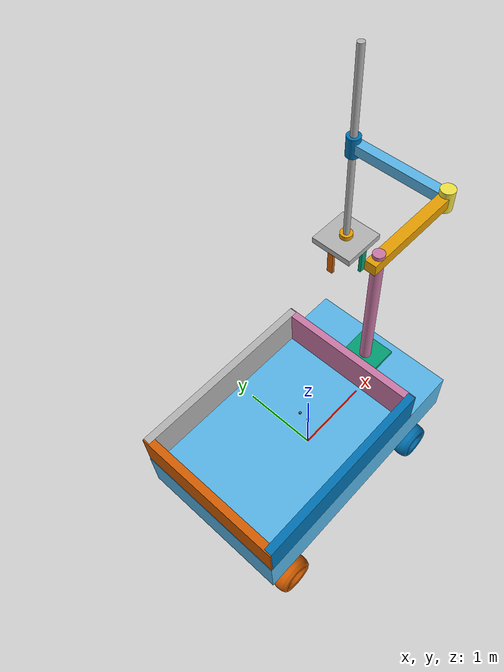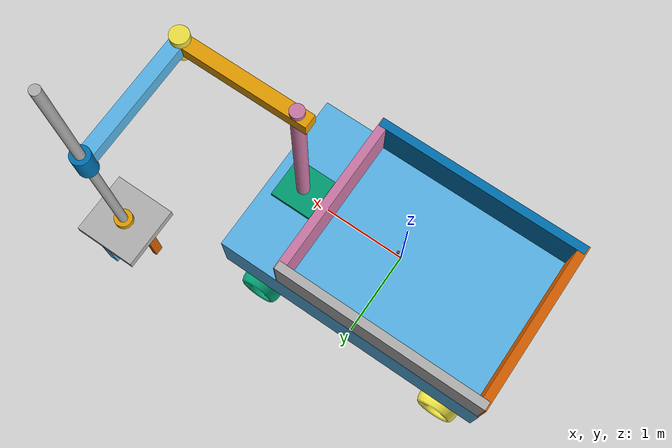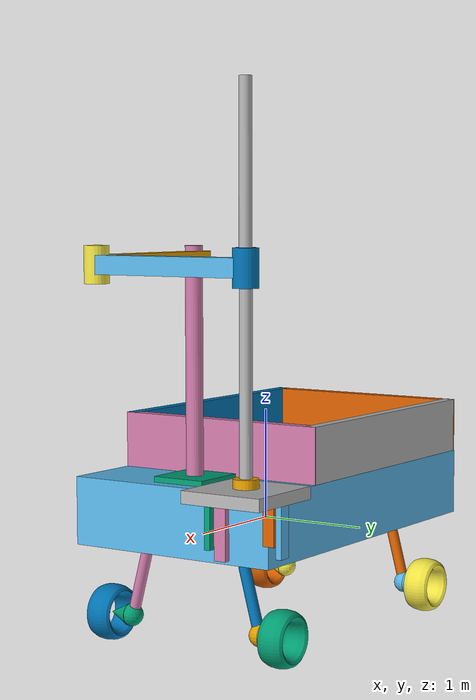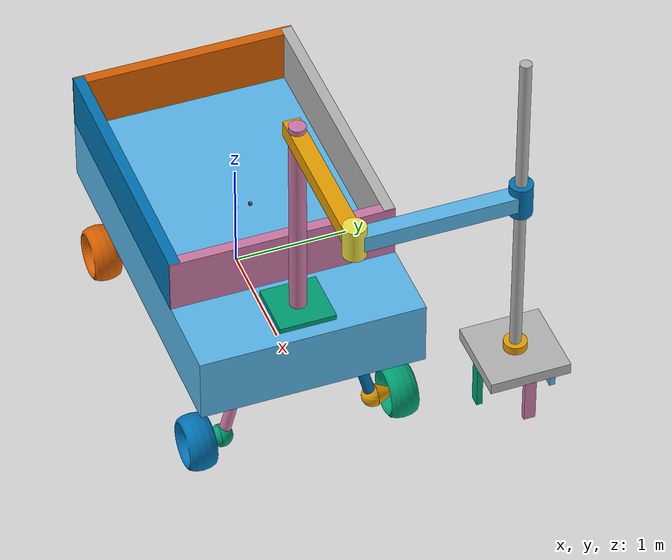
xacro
<?xml version="1.0"?>
<robot xmlns:xacro="http://ros.org/wiki/xacro" name="rover_description">

  <!-- Includes -->
  <xacro:include filename="$(find rover_description)/urdf/base/robot_base.urdf.xacro"/>
  <xacro:include filename="$(find rover_description)/urdf/wheels/rover_wheel.urdf.xacro"/>
  <xacro:include filename="$(find rover_description)/urdf/arm/scara.urdf.xacro"/>
  <xacro:include filename="$(find rover_description)/urdf/arm/gripper.urdf.xacro"/>
  <xacro:include filename="$(find rover_description)/urdf/sensors/camera.urdf.xacro"/>
  <xacro:include filename="$(find rover_description)/urdf/sensors/imu_sensor.urdf.xacro"/>

  <!-- Propiedades -->
  <xacro:property name="PI" value="3.1415926535897931"/>
  <xacro:property name="wheel_offset_x" value="0.95"/>
  <xacro:property name="wheel_offset_y" value="0.95"/>
  <xacro:property name="wheel_offset_z" value="-0.38"/>
  <xacro:property name="arm_offset_x" value="0.0"/>
  <xacro:property name="arm_offset_y" value="0.82"/>
  <xacro:property name="arm_offset_z" value="0.69"/>

  <!-- Argumentos -->
  <xacro:arg name="robot_ns" default=""/>
  <xacro:arg name="prefix" default=""/>

  <!-- Robot Parts -->
  <!-- Base -->
  <xacro:robot_base/>

  <!-- Wheels -->
  <xacro:rover_wheel prefix="" parent="base_link">
    <origin xyz="${wheel_offset_x} ${wheel_offset_y} ${wheel_offset_z}" rpy="${PI/2} 0 ${PI/2}"/>
  </xacro:rover_wheel>

  <xacro:rover_wheel prefix="_w2" parent="base_link">
    <origin xyz="${wheel_offset_x} -${wheel_offset_y} ${wheel_offset_z}" rpy="${PI/2} 0 ${PI/2}"/>
  </xacro:rover_wheel>

  <xacro:rover_wheel prefix="_w3" parent="base_link">
    <origin xyz="-${wheel_offset_x} ${wheel_offset_y} ${wheel_offset_z}" rpy="${PI/2} 0 -${PI/2}"/>
  </xacro:rover_wheel>

  <xacro:rover_wheel prefix="_w4" parent="base_link">
    <origin xyz="-${wheel_offset_x} -${wheel_offset_y} ${wheel_offset_z}" rpy="${PI/2} 0 -${PI/2}"/>
  </xacro:rover_wheel>

  <!-- Arm -->
  <xacro:scara/>

  <!-- Gripper -->
  <xacro:gripper/>

  <!-- Sensores -->

  <xacro:sensor_camera node_name="front_camera" node_namespace="$(arg robot_ns)" frame_prefix="$(arg prefix)front_camera" parent="$(arg prefix)base_footprint">
    <origin xyz="0.0 0.132 0.6" rpy="0 0 ${PI/2}"/>
  </xacro:sensor_camera>

  <xacro:sensor_camera node_name="arm_camera" node_namespace="$(arg robot_ns)" frame_prefix="$(arg prefix)arm_camera" parent="$(arg prefix)base_footprint">
    <origin xyz="0.0 0.0 0.6" rpy="0 0 ${PI/2}"/>
  </xacro:sensor_camera>

  <xacro:sensor_imu ns="$(arg robot_ns)" prefix="$(arg prefix)imu" parent="$(arg prefix)base_link">
    <origin xyz="0.0 0.0 0.0" rpy="0 0 0"/>
  </xacro:sensor_imu>

  <!-- Gazebo ROS control plugins -->
  <xacro:include filename="$(find rover_description)/urdf/ros2_control.urdf.xacro"/>
  <xacro:arg name="config_controllers" default="$(find rover_description)/config/rover_controllers.yaml"/>
  <xacro:arg name="update_rate" default="20"/>

</robot>

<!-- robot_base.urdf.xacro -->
<robot xmlns:xacro="http://ros.org/wiki/xacro" name="rover_description">
  <xacro:macro name="robot_base" params="">

  <!-- ################## CHASIS RUEDAS ################## -->
  <!-- Joint entre cilindro y chasis -->
    <!-- LINK: Cone -->
    <link name="Cone_link">
      <collision name="Cone_collision">
        <origin rpy="0.00000 0.00000 0.00000" xyz="0.00000 0.00000 0.00000"/>
        <geometry>
          <mesh filename="file://$(find rover_description)/meshes/dae/Cone.001.dae" scale="0.10000 0.10000 0.10000"/>
        </geometry>
      </collision>
      <inertial>
        <inertia ixx="0.00148" ixy="0.00000" ixz="-0.00000" iyy="0.00089" iyz="-0.00000" izz="0.00148"/>
        <origin rpy="0.00000 0.00000 0.00000" xyz="0.00000 -0.00000 -0.05000"/>
        <mass value="0.30000"/>
      </inertial>
      <visual name="Cone">
        <origin rpy="0.00000 0.00000 0.00000" xyz="0.00000 -0.00000 0.00000"/>
        <geometry>
          <mesh filename="file://$(find rover_description)/meshes/dae/Cone.001.dae" scale="0.10000 0.10000 0.10000"/>
        </geometry>
      </visual>
    </link>
    <link name="Cone_w2_link">
      <collision name="Cone_w2_collision">
        <origin rpy="0.00000 0.00000 0.00000" xyz="0.00000 -0.00000 -0.00000"/>
        <geometry>
          <mesh filename="file://$(find rover_description)/meshes/dae/Cone.002.dae" scale="0.10000 0.10000 0.10000"/>
        </geometry>
      </collision>
      <inertial>
        <inertia ixx="0.00148" ixy="0.00000" ixz="-0.00000" iyy="0.00089" iyz="-0.00000" izz="0.00148"/>
        <origin rpy="0.00000 0.00000 0.00000" xyz="0.00000 -0.00000 -0.05000"/>
        <mass value="0.30000"/>
      </inertial>
      <visual name="Cone_w2">
        <origin rpy="0.00000 0.00000 0.00000" xyz="0.00000 -0.00000 -0.00000"/>
        <geometry>
          <mesh filename="file://$(find rover_description)/meshes/dae/Cone.002.dae" scale="0.10000 0.10000 0.10000"/>
        </geometry>
      </visual>
    </link>
    <link name="Cone_w3_link">
      <collision name="Cone_w3_collision">
        <origin rpy="0.00000 0.00000 -3.14159" xyz="0.00000 -0.00000 0.00000"/>
        <geometry>
          <mesh filename="file://$(find rover_description)/meshes/dae/Cone.003.dae" scale="0.10000 0.10000 0.10000"/>
        </geometry>
      </collision>
      <inertial>
        <inertia ixx="0.00148" ixy="0.00000" ixz="0.00000" iyy="0.00089" iyz="0.00000" izz="0.00148"/>
        <origin rpy="0.00000 0.00000 0.00000" xyz="0.00000 -0.00000 -0.05000"/>
        <mass value="0.30000"/>
      </inertial>
      <visual name="Cone_w3">
        <origin rpy="-0.00000 0.00000 -0.00000" xyz="0.00000 -0.00000 0.00000"/>
        <geometry>
          <mesh filename="file://$(find rover_description)/meshes/dae/Cone.003.dae" scale="0.10000 0.10000 0.10000"/>
        </geometry>
      </visual>
    </link>
    <link name="Cone_w4_link">
      <collision name="Cone_w4_collision">
        <origin rpy="0.00000 0.00000 -3.14159" xyz="0.00000 -0.00000 0.00000"/>
        <geometry>
          <mesh filename="file://$(find rover_description)/meshes/dae/Cone.007.dae" scale="0.10000 0.10000 0.10000"/>
        </geometry>
      </collision>
      <inertial>
        <inertia ixx="0.00148" ixy="0.00000" ixz="0.00000" iyy="0.00089" iyz="0.00000" izz="0.00148"/>
        <origin rpy="0.00000 0.00000 0.00000" xyz="0.00000 -0.00000 -0.05000"/>
        <mass value="0.30000"/>
      </inertial>
      <visual name="Cone_w4">
        <origin rpy="-0.00000 0.00000 -0.00000" xyz="0.00000 -0.00000 0.00000"/>
        <geometry>
          <mesh filename="file://$(find rover_description)/meshes/dae/Cone.007.dae" scale="0.10000 0.10000 0.10000"/>
        </geometry>
      </visual>
    </link>

    <!-- LINK: Cylinder -->
    <link name="Cylinder_link">
      <collision name="Cylinder_collision">
        <origin rpy="0.00000 0.00000 0.00000" xyz="0.00000 0.00000 0.00000"/>
        <geometry>
          <cylinder radius="0.05000" length="0.75000"/>
        </geometry>
      </collision>
      <inertial>
        <inertia ixx="0.03800" ixy="0.00000" ixz="0.00000" iyy="0.03552" iyz="-0.00925" izz="0.00348"/>
        <origin rpy="0.00000 0.00000 0.00000" xyz="0.00000 0.00000 -0.00000"/>
        <mass value="0.80000"/>
      </inertial>
      <visual name="Cylinder">
        <origin rpy="0.00000 0.00000 0.00000" xyz="0.00000 0.00000 -0.00000"/>
        <geometry>
          <cylinder radius="0.05000" length="0.75000"/>
        </geometry>
      </visual>
    </link>
    <link name="Cylinder_w2_link">
      <collision name="Cylinder_w2_collision">
        <origin rpy="0.00000 0.00000 0.00000" xyz="0.00000 0.00000 -0.00000"/>
        <geometry>
          <cylinder radius="0.05000" length="0.75000"/>
        </geometry>
      </collision>
      <inertial>
        <inertia ixx="0.03800" ixy="0.00000" ixz="0.00000" iyy="0.03552" iyz="-0.00925" izz="0.00348"/>
        <origin rpy="0.00000 0.00000 0.00000" xyz="0.00000 0.00000 -0.00000"/>
        <mass value="0.80000"/>
      </inertial>
      <visual name="Cylinder_w2">
        <origin rpy="0.00000 0.00000 0.00000" xyz="0.00000 0.00000 -0.00000"/>
        <geometry>
          <cylinder radius="0.05000" length="0.75000"/>
        </geometry>
      </visual>
    </link>
    <link name="Cylinder_w3_link">
      <collision name="Cylinder_w3_collision">
        <origin rpy="-0.00000 -0.00000 3.14159" xyz="0.00000 -0.00000 0.00000"/>
        <geometry>
          <cylinder radius="0.05000" length="0.75000"/>
        </geometry>
      </collision>
      <inertial>
        <inertia ixx="0.03800" ixy="0.00000" ixz="-0.00000" iyy="0.03552" iyz="0.00925" izz="0.00348"/>
        <origin rpy="0.00000 0.00000 0.00000" xyz="0.00000 -0.00000 0.00000"/>
        <mass value="0.80000"/>
      </inertial>
      <visual name="Cylinder_w3">
        <origin rpy="0.00000 -0.00000 0.00000" xyz="0.00000 -0.00000 0.00000"/>
        <geometry>
          <cylinder radius="0.05000" length="0.75000"/>
        </geometry>
      </visual>
    </link>
    <link name="Cylinder_w4_link">
      <collision name="Cylinder_w4_collision">
        <origin rpy="-0.00000 -0.00000 3.14159" xyz="-0.00000 0.00000 0.00000"/>
        <geometry>
          <cylinder radius="0.05000" length="0.75000"/>
        </geometry>
      </collision>
      <inertial>
        <inertia ixx="0.03800" ixy="0.00000" ixz="-0.00000" iyy="0.03552" iyz="0.00925" izz="0.00348"/>
        <origin rpy="0.00000 0.00000 0.00000" xyz="-0.00000 0.00000 0.00000"/>
        <mass value="0.80000"/>
      </inertial>
      <visual name="Cylinder_w4">
        <origin rpy="0.00000 -0.00000 0.00000" xyz="-0.00000 -0.00000 0.00000"/>
        <geometry>
          <cylinder radius="0.05000" length="0.75000"/>
        </geometry>
      </visual>
    </link>

    <!-- LINK: Sphere -->
    <link name="Sphere_link">
      <collision name="Sphere_collision">
        <origin rpy="0.00000 0.00000 0.00000" xyz="0.00000 0.00000 0.00000"/>
        <geometry>
          <sphere radius="0.10000"/>
        </geometry>
      </collision>
      <inertial>
        <inertia ixx="0.00120" ixy="0.00000" ixz="0.00000" iyy="0.00120" iyz="0.00000" izz="0.00120"/>
        <origin rpy="0.00000 0.00000 0.00000" xyz="0.00000 0.00000 0.00000"/>
        <mass value="0.30000"/>
      </inertial>
      <visual name="Sphere">
        <origin rpy="0.00000 0.00000 0.00000" xyz="0.00000 0.00000 0.00000"/>
        <geometry>
          <sphere radius="0.10000"/>
        </geometry>
      </visual>
    </link>
    <link name="Sphere_w2_link">
      <collision name="Sphere_w2_collision">
        <origin rpy="0.00000 0.00000 0.00000" xyz="-0.00000 -0.00000 -0.00000"/>
        <geometry>
          <sphere radius="0.10000"/>
        </geometry>
      </collision>
      <inertial>
        <inertia ixx="0.00120" ixy="0.00000" ixz="0.00000" iyy="0.00120" iyz="0.00000" izz="0.00120"/>
        <origin rpy="0.00000 0.00000 0.00000" xyz="-0.00000 -0.00000 0.00000"/>
        <mass value="0.30000"/>
      </inertial>
      <visual name="Sphere_w2">
        <origin rpy="0.00000 0.00000 0.00000" xyz="-0.00000 -0.00000 0.00000"/>
        <geometry>
          <sphere radius="0.10000"/>
        </geometry>
      </visual>
    </link>
    <link name="Sphere_w3_link">
      <collision name="Sphere_w3_collision">
        <origin rpy="0.00000 0.00000 3.14159" xyz="0.00000 -0.00000 -0.00000"/>
        <geometry>
          <sphere radius="0.10000"/>
        </geometry>
      </collision>
      <inertial>
        <inertia ixx="0.00120" ixy="0.00000" ixz="0.00000" iyy="0.00120" iyz="-0.00000" izz="0.00120"/>
        <origin rpy="0.00000 0.00000 0.00000" xyz="0.00000 -0.00000 -0.00000"/>
        <mass value="0.30000"/>
      </inertial>
      <visual name="Sphere_w3">
        <origin rpy="0.00000 0.00000 0.00000" xyz="0.00000 -0.00000 -0.00000"/>
        <geometry>
          <sphere radius="0.10000"/>
        </geometry>
      </visual>
    </link>
    <link name="Sphere_w4_link">
      <collision name="Sphere_w4_collision">
        <origin rpy="0.00000 0.00000 3.14159" xyz="0.00000 -0.00000 -0.00000"/>
        <geometry>
          <sphere radius="0.10000"/>
        </geometry>
      </collision>
      <inertial>
        <inertia ixx="0.00120" ixy="0.00000" ixz="0.00000" iyy="0.00120" iyz="-0.00000" izz="0.00120"/>
        <origin rpy="0.00000 0.00000 0.00000" xyz="0.00000 -0.00000 -0.00000"/>
        <mass value="0.30000"/>
      </inertial>
      <visual name="Sphere_w4">
        <origin rpy="0.00000 0.00000 0.00000" xyz="0.00000 -0.00000 -0.00000"/>
        <geometry>
          <sphere radius="0.10000"/>
        </geometry>
      </visual>
    </link>

    <joint name="Cylinder_link_joint" type="fixed">
      <origin rpy="-0.26180 0.00000 0.00000" xyz="-1.25000 -0.65807 -0.39906"/>
      <parent link="base_link"/>
      <child link="Cylinder_link"/>
    </joint>
    <joint name="Cylinder_w2_link_joint" type="fixed">
      <origin rpy="-0.26180 0.00000 0.00000" xyz="1.25000 -0.65807 -0.39860"/>
      <parent link="base_link"/>
      <child link="Cylinder_w2_link"/>
    </joint>
    <joint name="Cylinder_w3_link_joint" type="fixed">
      <origin rpy="-0.26180 -0.00000 -3.14159" xyz="-1.25000 0.47479 -0.40695"/>
      <parent link="base_link"/>
      <child link="Cylinder_w3_link"/>
    </joint>
    <joint name="Cylinder_w4_link_joint" type="fixed">
      <origin rpy="-0.26180 -0.00000 -3.14159" xyz="1.25000 0.47479 -0.40719"/>
      <parent link="base_link"/>
      <child link="Cylinder_w4_link"/>
    </joint>
    <joint name="Sphere_link_joint" type="fixed">
      <origin rpy="0.26180 0.00000 0.00000" xyz="0.00000 -0.01047 -0.41352"/>
      <parent link="Cylinder_link"/>
      <child link="Sphere_link"/>
    </joint>
    <joint name="Sphere_w2_link_joint" type="fixed">
      <origin rpy="0.26180 0.00000 0.00000" xyz="0.00000 -0.01047 -0.41352"/>
      <parent link="Cylinder_w2_link"/>
      <child link="Sphere_w2_link"/>
    </joint>
    <joint name="Sphere_w3_link_joint" type="fixed">
      <origin rpy="0.26180 0.00000 0.00000" xyz="-0.00000 -0.01267 -0.40736"/>
      <parent link="Cylinder_w3_link"/>
      <child link="Sphere_w3_link"/>
    </joint>
    <joint name="Sphere_w4_link_joint" type="fixed">
      <origin rpy="0.26180 0.00000 0.00000" xyz="-0.00000 -0.01267 -0.40736"/>
      <parent link="Cylinder_w4_link"/>
      <child link="Sphere_w4_link"/>
    </joint>

    <joint name="Cone_link_joint" type="fixed">
      <origin rpy="1.57080 0.00000 0.00000" xyz="0.00000 -0.12479 0.00000"/>
      <parent link="Sphere_link"/>
      <child link="Cone_link"/>
    </joint>
    <joint name="Cone_w2_link_joint" type="fixed">
      <origin rpy="1.57080 0.00000 0.00000" xyz="-0.00000 -0.12479 -0.00000"/>
      <parent link="Sphere_w2_link"/>
      <child link="Cone_w2_link"/>
    </joint>
    <joint name="Cone_w3_link_joint" type="fixed">
      <origin rpy="1.57080 -0.00000 -0.00000" xyz="-0.00000 -0.12479 0.00000"/>
      <parent link="Sphere_w3_link"/>
      <child link="Cone_w3_link"/>
    </joint>
    <joint name="Cone_w4_link_joint" type="fixed">
      <origin rpy="1.57080 -0.00000 -0.00000" xyz="0.00000 -0.12479 -0.00000"/>
      <parent link="Sphere_w4_link"/>
      <child link="Cone_w4_link"/>
    </joint>
  <!-- ################## CHASIS RUEDAS ################## -->

  <!-- ################## CHASIS TRAILER ################## -->
  <link name="Cube_trailer_2_link">
    <collision name="Cube_trailer_2_collision">
      <origin rpy="0.00000 0.00000 0.00000" xyz="0.00000 0.00000 0.00000"/>
      <geometry>
        <box size="2.50000 0.10000 0.50000"/>
      </geometry>
    </collision>
    <inertial>
      <inertia ixx="0.65000" ixy="0.00000" ixz="0.00000" iyy="16.25000" iyz="0.00000" izz="15.65000"/>
      <origin rpy="0.00000 0.00000 0.00000" xyz="0.00000 -0.00000 0.00000"/>
      <mass value="30.00000"/>
    </inertial>
    <visual name="Cube_trailer_2">
      <origin rpy="0.00000 0.00000 0.00000" xyz="-0.00000 -0.00000 0.00000"/>
      <geometry>
        <box size="2.50000 0.10000 0.50000"/>
      </geometry>
    </visual>
  </link>
  <link name="Cube_trailer_3_link">
    <collision name="Cube_trailer_3_collision">
      <origin rpy="0.00000 0.00000 0.00000" xyz="-0.00000 -0.00000 0.00000"/>
      <geometry>
        <box size="2.00000 0.10000 0.50000"/>
      </geometry>
    </collision>
    <inertial>
      <inertia ixx="7.08333" ixy="0.00000" ixz="0.00000" iyy="0.43333" iyz="0.00000" izz="6.68333"/>
      <origin rpy="0.00000 0.00000 0.00000" xyz="-0.00000 0.00000 0.00000"/>
      <mass value="20.00000"/>
    </inertial>
    <visual name="Cube_trailer_3">
      <origin rpy="0.00000 0.00000 0.00000" xyz="-0.00000 0.00000 0.00000"/>
      <geometry>
        <box size="2.00000 0.10000 0.50000"/>
      </geometry>
    </visual>
  </link>
  <link name="Cube_trailer_4_link">
    <collision name="Cube_trailer_4_collision">
      <origin rpy="0.00000 0.00000 0.00000" xyz="-0.00000 0.00000 0.00000"/>
      <geometry>
        <box size="2.00000 0.10000 0.50000"/>
      </geometry>
    </collision>
    <inertial>
      <inertia ixx="7.08333" ixy="0.00000" ixz="0.00000" iyy="0.43333" iyz="0.00000" izz="6.68333"/>
      <origin rpy="0.00000 0.00000 0.00000" xyz="0.00000 0.00000 0.00000"/>
      <mass value="20.00000"/>
    </inertial>
    <visual name="Cube_trailer_4">
      <origin rpy="0.00000 0.00000 0.00000" xyz="-0.00000 0.00000 0.00000"/>
      <geometry>
        <box size="2.00000 0.10000 0.50000"/>
      </geometry>
    </visual>
  </link>
  <link name="Cube_trailer_link">
    <collision name="Cube_trailer_collision">
      <origin rpy="0.00000 0.00000 0.00000" xyz="0.00000 0.00000 0.00000"/>
      <geometry>
        <box size="2.50000 0.10000 0.50000"/>
      </geometry>
    </collision>
    <inertial>
      <inertia ixx="0.65000" ixy="0.00000" ixz="0.00000" iyy="16.25000" iyz="0.00000" izz="15.65000"/>
      <origin rpy="0.00000 0.00000 0.00000" xyz="0.00000 0.00000 0.00000"/>
      <mass value="30.00000"/>
    </inertial>
    <visual name="Cube_trailer">
      <origin rpy="0.00000 0.00000 0.00000" xyz="-0.00000 0.00000 0.00000"/>
      <geometry>
        <box size="2.50000 0.10000 0.50000"/>
      </geometry>
    </visual>
  </link>

  <joint name="Cube_trailer_2_link_joint" type="fixed">
    <origin rpy="0.00000 0.00000 0.00000" xyz="0.35456 0.85200 0.70968"/>
    <parent link="base_link"/>
    <child link="Cube_trailer_2_link"/>
  </joint>
  <joint name="Cube_trailer_3_link_joint" type="fixed">
    <origin rpy="0.00000 0.00000 1.57080" xyz="1.57008 -0.09844 0.70917"/>
    <parent link="base_link"/>
    <child link="Cube_trailer_3_link"/>
  </joint>
  <joint name="Cube_trailer_4_link_joint" type="fixed">
    <origin rpy="0.00000 0.00000 1.57080" xyz="-0.85539 -0.09844 0.70917"/>
    <parent link="base_link"/>
    <child link="Cube_trailer_4_link"/>
  </joint>
  <joint name="Cube_trailer_link_joint" type="fixed">
    <origin rpy="0.00000 0.00000 0.00000" xyz="0.35456 -1.04857 0.70968"/>
    <parent link="base_link"/>
    <child link="Cube_trailer_link"/>
  </joint>
  <!-- ################## CHASIS TRAILER ################## -->

  <link name="base_footprint"/>
  <joint name="base_footprint_joint" type="fixed">
    <parent link="base_footprint"/>
    <child link="base_link"/>
    <origin xyz="0 0 0.05" rpy="0 0 3.1415"/>
  </joint>

  <joint name="base_arm_cube_link_joint" type="fixed">
    <origin rpy="0.00000 0.00000 0.00000" xyz="-1.25000 -0.10000 0.48960"/>
    <parent link="base_link"/>
    <child link="base_arm_cube_link"/>
  </joint>

  <link name="base_link">
    <collision name="chasis_collision">
      <origin rpy="0.00000 0.00000 0.00000" xyz="0.00000 -0.09507 0.16631"/>
      <geometry>
        <mesh filename="file://$(find rover_description)/meshes/dae/Cube.004.dae" scale="1.62500 1.00000 0.30000"/>
      </geometry>
    </collision>
    <inertial>
      <inertia ixx="109.00000" ixy="0.00000" ixz="0.00000" iyy="273.06250" iyz="0.00000" izz="364.06250"/>
      <origin rpy="0.00000 0.00000 0.00000" xyz="0.00000 -0.10089 0.16631"/>
      <mass value="300.00000"/>
    </inertial>
    <visual name="chasis">
      <origin rpy="0.00000 0.00000 0.00000" xyz="0.00000 -0.10089 0.16631"/>
      <geometry>
        <box size="3.25000 2.00000 0.60000"/>
      </geometry>
    </visual>
  </link>

</xacro:macro>

</robot>

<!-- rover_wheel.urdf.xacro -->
<robot xmlns:xacro="http://ros.org/wiki/xacro" name="rover_description">

  <xacro:macro name="rover_wheel" params="prefix parent *origin">
    <!-- Joint entre cono y rueda -->
    <joint name="wheel${prefix}_link_joint" type="continuous">
      <limit lower="0" upper="0" effort="0.0" velocity="0.0"/>
      <origin rpy="0 0 0" xyz="0.0 0.0 0.1"/>
      <parent link="Cone${prefix}_link"/>
      <child link="wheel${prefix}_link"/>
      <axis xyz="0 0 1"/>
    </joint>

    <!-- LINK: Wheel -->
    <link name="wheel${prefix}_link">
      <collision name="wheel${prefix}_collision">
        <origin rpy="0 0 0" xyz="0 0 0"/>
        <geometry>
          <mesh filename="file://$(find rover_description)/meshes/dae/Torus.dae" scale="0.2 0.2 0.5"/>
        </geometry>
      </collision>
      <inertial>
        <mass value="1.0"/>
        <origin xyz="0 0 0" rpy="0 0 0"/>
        <inertia ixx="0.01774" ixy="0.0" ixz="0.0"
                 iyy="0.02932" iyz="0.0" izz="0.01774"/>
      </inertial>
      <visual name="wheel${prefix}">
        <origin rpy="0 0 0" xyz="0 0 0"/>
        <geometry>
          <mesh filename="file://$(find rover_description)/meshes/dae/Torus.dae" scale="0.2 0.2 0.5"/>
        </geometry>
      </visual>
    </link>

  </xacro:macro>

</robot>

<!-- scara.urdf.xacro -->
<robot xmlns:xacro="http://ros.org/wiki/xacro" name="rover_description">
  <xacro:macro name="scara" params="">

    <joint name="arm_cilynder_1_link_joint" type="revolute">
      <limit lower="-3.14000" upper="3.14000" effort="0.00000" velocity="0.00000"/>
      <origin rpy="0.00000 0.00000 0.00000" xyz="0.00000 0.00000 0.76594"/>
      <parent link="base_arm_cube_link"/>
      <child link="arm_cilynder_1_link"/>
      <axis xyz="0.00000 0.00000 1.00000"/>
    </joint>
    <joint name="arm_cilynder_2_link_joint" type="prismatic">
      <limit lower="-1.20000" upper="1.30000" effort="0.00000" velocity="0.00000"/>
      <origin rpy="0.00000 0.00000 0.00000" xyz="0.00000 -0.00000 1.05000"/>
      <parent link="cylinder_jnt_2_link"/>
      <child link="arm_cilynder_2_link"/>
      <axis xyz="0.00000 0.00000 1.00000"/>
    </joint>
    <joint name="arm_cube_1_link_joint" type="fixed">
      <origin rpy="0.00000 0.00000 0.00000" xyz="-0.60749 0.00000 0.58880"/>
      <parent link="arm_cilynder_1_link"/>
      <child link="arm_cube_1_link"/>
    </joint>
    <joint name="arm_cube_2_link_joint" type="fixed">
      <origin rpy="0.00000 0.00000 1.57080" xyz="-0.01161 -0.70550 0.00000"/>
      <parent link="cylinder_jnt_1_link"/>
      <child link="arm_cube_2_link"/>
    </joint>

    <joint name="cylinder_jnt_1_link_joint" type="revolute">
      <limit lower="-4.34000" upper="1.20000" effort="0.00000" velocity="0.00000"/>
      <origin rpy="0.00000 0.00000 0.00000" xyz="-0.68724 0.00000 0.50820"/>
      <parent link="arm_cube_1_link"/>
      <child link="cylinder_jnt_1_link"/>
      <axis xyz="0.00000 0.00000 1.00000"/>
    </joint>
    <joint name="cylinder_jnt_2_link_joint" type="fixed">
      <origin rpy="0.00000 0.00000 -1.57080" xyz="-0.70726 -0.01063 0.00000"/>
      <parent link="arm_cube_2_link"/>
      <child link="cylinder_jnt_2_link"/>
    </joint>
    <link name="arm_cilynder_1_link">
      <collision name="arm_cilynder_1_collision">
        <origin rpy="0.00000 0.00000 0.00000" xyz="-0.00000 -0.00000 0.22080"/>
        <geometry>
          <cylinder radius="0.07500" length="2.00000"/>
        </geometry>
      </collision>
      <inertial>
        <inertia ixx="0.28336" ixy="0.00000" ixz="0.00000" iyy="0.28336" iyz="0.00000" izz="0.00422"/>
        <origin rpy="0.00000 0.00000 0.00000" xyz="-0.00000 0.00000 0.00000"/>
        <mass value="1.50000"/>
      </inertial>
      <visual name="arm_cilynder_1">
        <origin rpy="0.00000 0.00000 0.00000" xyz="-0.00000 -0.00000 0.22080"/>
        <geometry>
          <cylinder radius="0.07500" length="2.00000"/>
        </geometry>
      </visual>
    </link>
    <link name="arm_cilynder_2_link">
      <collision name="arm_cilynder_2_collision">
        <origin rpy="0.00000 0.00000 0.00000" xyz="0.00000 -0.00000 -1.14646"/>
        <geometry>
          <cylinder radius="0.05000" length="3.00000"/>
        </geometry>
      </collision>
      <inertial>
        <inertia ixx="1.12594" ixy="0.00000" ixz="0.00000" iyy="1.12594" iyz="0.00000" izz="0.00188"/>
        <origin rpy="0.00000 0.00000 0.00000" xyz="0.00000 -0.00000 0.00000"/>
        <mass value="1.50000"/>
      </inertial>
      <visual name="arm_cilynder_2">
        <origin rpy="0.00000 0.00000 0.00000" xyz="-0.00000 -0.00000 -1.14646"/>
        <geometry>
          <cylinder radius="0.05000" length="3.00000"/>
        </geometry>
      </visual>
    </link>
    <link name="arm_cube_1_link">
      <collision name="arm_cube_1_collision">
        <origin rpy="0.00000 0.00000 0.00000" xyz="-0.00000 0.00000 0.50820"/>
        <geometry>
          <box size="1.50000 0.15000 0.15000"/>
        </geometry>
      </collision>
      <inertial>
        <inertia ixx="0.00563" ixy="0.00000" ixz="0.00000" iyy="0.28406" iyz="0.00000" izz="0.28406"/>
        <origin rpy="0.00000 0.00000 0.00000" xyz="-0.00000 0.00000 0.00000"/>
        <mass value="1.50000"/>
      </inertial>
      <visual name="arm_cube_1">
        <origin rpy="0.00000 0.00000 0.00000" xyz="-0.00000 -0.00000 0.50820"/>
        <geometry>
          <box size="1.50000 0.15000 0.15000"/>
        </geometry>
      </visual>
    </link>
    <link name="arm_cube_2_link">
      <collision name="arm_cube_2_collision">
        <origin rpy="0.00000 0.00000 0.00000" xyz="-0.00000 0.00000 0.00000"/>
        <geometry>
          <box size="1.50000 0.15000 0.15000"/>
        </geometry>
      </collision>
      <inertial>
        <inertia ixx="0.28406" ixy="0.00000" ixz="0.00000" iyy="0.00563" iyz="0.00000" izz="0.28406"/>
        <origin rpy="0.00000 0.00000 0.00000" xyz="-0.00000 0.00000 0.00000"/>
        <mass value="1.50000"/>
      </inertial>
      <visual name="arm_cube_2">
        <origin rpy="0.00000 0.00000 0.00000" xyz="-0.00000 0.00000 0.00000"/>
        <geometry>
          <box size="1.50000 0.15000 0.15000"/>
        </geometry>
      </visual>
    </link>
    <link name="base_arm_cube_link">
      <collision name="base_arm_cube_collision">
        <origin rpy="0.00000 0.00000 0.00000" xyz="-0.00000 0.00000 -0.00000"/>
        <geometry>
          <box size="0.50000 0.50000 0.05000"/>
        </geometry>
      </collision>
      <inertial>
        <inertia ixx="0.01052" ixy="0.00000" ixz="0.00000" iyy="0.01052" iyz="0.00000" izz="0.02083"/>
        <origin rpy="0.00000 0.00000 0.00000" xyz="-0.00000 0.00000 -0.00000"/>
        <mass value="0.50000"/>
      </inertial>
      <visual name="base_arm_cube">
        <origin rpy="0.00000 0.00000 0.00000" xyz="-0.00000 0.00000 -0.00000"/>
        <geometry>
          <box size="0.50000 0.50000 0.05000"/>
        </geometry>
      </visual>
    </link>
    <link name="cylinder_jnt_1_link">
      <collision name="cylinder_jnt_1_collision">
        <origin rpy="0.00000 0.00000 0.00000" xyz="-0.00000 -0.00000 0.00000"/>
        <geometry>
          <cylinder radius="0.10000" length="0.30000"/>
        </geometry>
      </collision>
      <inertial>
        <inertia ixx="0.00250" ixy="0.00000" ixz="0.00000" iyy="0.00250" iyz="0.00000" izz="0.00125"/>
        <origin rpy="0.00000 0.00000 0.00000" xyz="-0.00000 -0.00000 0.00000"/>
        <mass value="0.25000"/>
      </inertial>
      <visual name="cylinder_jnt_1">
        <origin rpy="0.00000 0.00000 0.00000" xyz="-0.00000 -0.00000 0.00000"/>
        <geometry>
          <cylinder radius="0.10000" length="0.30000"/>
        </geometry>
      </visual>
    </link>
    <link name="cylinder_jnt_2_link">
      <collision name="cylinder_jnt_2_collision">
        <origin rpy="0.00000 0.00000 0.00000" xyz="0.00000 -0.00000 0.00000"/>
        <geometry>
          <cylinder radius="0.10000" length="0.30000"/>
        </geometry>
      </collision>
      <inertial>
        <inertia ixx="0.00250" ixy="0.00000" ixz="0.00000" iyy="0.00250" iyz="0.00000" izz="0.00125"/>
        <origin rpy="0.00000 0.00000 0.00000" xyz="-0.00000 -0.00000 0.00000"/>
        <mass value="0.25000"/>
      </inertial>
      <visual name="cylinder_jnt_2">
        <origin rpy="0.00000 0.00000 0.00000" xyz="-0.00000 -0.00000 0.00000"/>
        <geometry>
          <cylinder radius="0.10000" length="0.30000"/>
        </geometry>
      </visual>
    </link>
  </xacro:macro>
</robot>

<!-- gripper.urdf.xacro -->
<robot xmlns:xacro="http://ros.org/wiki/xacro" name="rover_description">
  <xacro:macro name="gripper" params="">
    <joint name="back_finger_link_joint" type="prismatic">
      <limit lower="0.06000" upper="0.00000" effort="0.00000" velocity="0.00000"/>
      <origin rpy="0.00000 0.00000 1.57080" xyz="0.32481 -0.00033 -0.24871"/>
      <parent link="hand_cube_link"/>
      <child link="back_finger_link"/>
      <axis xyz="0.00000 1.00000 0.00000"/>
    </joint>
    <joint name="front_finger_link_joint" type="prismatic">
      <limit lower="0.06000" upper="0.00000" effort="0.00000" velocity="0.00000"/>
      <origin rpy="0.00000 0.00000 1.57080" xyz="-0.32415 -0.00033 -0.24741"/>
      <parent link="hand_cube_link"/>
      <child link="front_finger_link"/>
      <axis xyz="0.00000 1.00000 0.00000"/>
    </joint>
    <joint name="hand_cube_link_joint" type="fixed">
      <origin rpy="0.00000 0.00000 0.00000" xyz="0.00000 -0.00000 -0.07303"/>
      <parent link="hand_cylinder_link"/>
      <child link="hand_cube_link"/>
    </joint>
    <joint name="hand_cylinder_link_joint" type="revolute">
      <limit lower="-3.14000" upper="3.14000" effort="0.00000" velocity="0.00000"/>
      <origin rpy="0.00000 0.00000 0.00000" xyz="0.00000 -0.00000 -2.67343"/>
      <parent link="arm_cilynder_2_link"/>
      <child link="hand_cylinder_link"/>
      <axis xyz="0.00000 0.00000 1.00000"/>
    </joint>
    <joint name="left_finger_link_joint" type="prismatic">
      <limit lower="0.06000" upper="0.00000" effort="0.00000" velocity="0.00000"/>
      <origin rpy="0.00000 0.00000 0.00000" xyz="-0.00429 -0.32443 -0.19256"/>
      <parent link="hand_cube_link"/>
      <child link="left_finger_link"/>
      <axis xyz="0.00000 1.00000 0.00000"/>
    </joint>
    <joint name="right_finger_link_joint" type="prismatic">
      <limit lower="0.06000" upper="0.00000" effort="0.00000" velocity="0.00000"/>
      <origin rpy="0.00000 0.00000 0.00000" xyz="-0.00429 0.32378 -0.19256"/>
      <parent link="hand_cube_link"/>
      <child link="right_finger_link"/>
      <axis xyz="0.00000 1.00000 0.00000"/>
    </joint>
    <link name="back_finger_link">
      <collision name="back_finger_collision">
        <origin rpy="0.00000 0.00000 0.00000" xyz="-0.00000 0.00000 0.00000"/>
        <geometry>
          <box size="0.10000 0.05000 0.40000"/>
        </geometry>
      </collision>
      <inertial>
        <inertia ixx="0.00142" ixy="0.00000" ixz="0.00000" iyy="0.00135" iyz="0.00000" izz="0.00010"/>
        <origin rpy="0.00000 0.00000 0.00000" xyz="-0.00000 0.00000 0.00000"/>
        <mass value="0.10000"/>
      </inertial>
      <visual name="back_finger">
        <origin rpy="0.00000 0.00000 0.00000" xyz="0.00000 0.00000 0.00000"/>
        <geometry>
          <box size="0.10000 0.05000 0.40000"/>
        </geometry>
      </visual>
    </link>
    <link name="front_finger_link">
      <collision name="front_finger_collision">
        <origin rpy="0.00000 0.00000 0.00000" xyz="-0.00000 0.00000 0.00000"/>
        <geometry>
          <box size="0.10000 0.05000 0.40000"/>
        </geometry>
      </collision>
      <inertial>
        <inertia ixx="0.00142" ixy="0.00000" ixz="0.00000" iyy="0.00135" iyz="0.00000" izz="0.00010"/>
        <origin rpy="0.00000 0.00000 0.00000" xyz="-0.00000 0.00000 0.00000"/>
        <mass value="0.10000"/>
      </inertial>
      <visual name="front_finger">
        <origin rpy="0.00000 0.00000 0.00000" xyz="-0.00000 0.00000 0.00000"/>
        <geometry>
          <box size="0.10000 0.05000 0.40000"/>
        </geometry>
      </visual>
    </link>
    <link name="hand_cube_link">
      <collision name="hand_cube_collision">
        <origin rpy="0.00000 0.00000 0.00000" xyz="0.00000 -0.00000 0.00000"/>
        <geometry>
          <box size="0.70000 0.70000 0.10000"/>
        </geometry>
      </collision>
      <inertial>
        <inertia ixx="0.01042" ixy="0.00000" ixz="0.00000" iyy="0.00151" iyz="0.00000" izz="0.01151"/>
        <origin rpy="0.00000 0.00000 0.00000" xyz="-0.00000 -0.00000 0.00000"/>
        <mass value="0.25000"/>
      </inertial>
      <visual name="hand_cube">
        <origin rpy="0.00000 0.00000 0.00000" xyz="-0.00000 -0.00000 0.00000"/>
        <geometry>
          <box size="0.70000 0.70000 0.10000"/>
        </geometry>
      </visual>
    </link>
    <link name="hand_cylinder_link">
      <collision name="hand_cylinder_collision">
        <origin rpy="0.00000 0.00000 0.00000" xyz="0.00000 -0.00000 0.00000"/>
        <geometry>
          <cylinder radius="0.10000" length="0.10000"/>
        </geometry>
      </collision>
      <inertial>
        <inertia ixx="0.00033" ixy="0.00000" ixz="0.00000" iyy="0.00033" iyz="0.00000" izz="0.00050"/>
        <origin rpy="0.00000 0.00000 0.00000" xyz="-0.00000 -0.00000 0.00000"/>
        <mass value="0.10000"/>
      </inertial>
      <visual name="hand_cylinder">
        <origin rpy="0.00000 0.00000 0.00000" xyz="-0.00000 -0.00000 0.00000"/>
        <geometry>
          <cylinder radius="0.10000" length="0.10000"/>
        </geometry>
      </visual>
    </link>
    <link name="left_finger_link">
      <collision name="left_finger_collision">
        <origin rpy="0.00000 0.00000 0.00000" xyz="-0.00000 -0.00000 -0.05744"/>
        <geometry>
          <box size="0.10000 0.05000 0.40000"/>
        </geometry>
      </collision>
      <inertial>
        <inertia ixx="0.00077" ixy="0.00000" ixz="0.00000" iyy="0.00083" iyz="0.00000" izz="0.00010"/>
        <origin rpy="0.00000 0.00000 0.00000" xyz="0.00000 -0.00000 0.00000"/>
        <mass value="0.10000"/>
      </inertial>
      <visual name="left_finger">
        <origin rpy="0.00000 0.00000 0.00000" xyz="-0.00000 -0.00000 -0.05744"/>
        <geometry>
          <box size="0.10000 0.05000 0.40000"/>
        </geometry>
      </visual>
    </link>
    <link name="right_finger_link">
      <collision name="right_finger_collision">
        <origin rpy="0.00000 0.00000 0.00000" xyz="-0.00000 -0.00000 -0.05744"/>
        <geometry>
          <box size="0.10000 0.05000 0.40000"/>
        </geometry>
      </collision>
      <inertial>
        <inertia ixx="0.00077" ixy="0.00000" ixz="0.00000" iyy="0.00083" iyz="0.00000" izz="0.00010"/>
        <origin rpy="0.00000 0.00000 0.00000" xyz="0.00000 -0.00000 0.00000"/>
        <mass value="0.10000"/>
      </inertial>
      <visual name="right_finger">
        <origin rpy="0.00000 0.00000 0.00000" xyz="-0.00000 -0.00000 -0.05744"/>
        <geometry>
          <box size="0.10000 0.05000 0.40000"/>
        </geometry>
      </visual>
    </link>
  </xacro:macro>
</robot>

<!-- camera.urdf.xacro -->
<robot name="camera" xmlns:xacro="http://wiki.ros.org/xacro">

   <!--  ######## UTILS ########  -->
   <xacro:macro name="solid_cuboid_inertia" params="m w h d">
      <inertia ixx="${(m*(h*h+d*d))/12}" ixy="0" ixz="0" iyy="${(m*(w*w+d*d))/12}" iyz="0" izz="${(m*(w*w+h*h))/12}"/>
   </xacro:macro>

  <!-- ##### CAMERA ##### -->
  <xacro:macro name="sensor_camera_generic" params="frame_prefix
                                                    parent
                                                    *origin
                                                    node_name:=camera
                                                    node_namespace:=${None}
                                                    topic_prefix:=/
                                                    horizontal_fov:=80
                                                    vertical_fov:=60
                                                    video_width:=1280
                                                    video_height:=720
                                                    video_fps:=30">

    <!-- node namespace is used from node name if not set -->
    <xacro:if value="${node_namespace == None}">
      <xacro:property name="node_namespace" value="${node_name}"/>
    </xacro:if>

    <joint name="${frame_prefix}_camera_base_joint" type="fixed">
      <xacro:insert_block name="origin"/>
      <parent link="${parent}"/>
      <child link="${frame_prefix}_camera_base_link"/>
    </joint>

    <link name="${frame_prefix}_camera_base_link">
      <visual>
        <origin xyz="0 0 0" rpy="0 0 0"/>
        <geometry>
          <box size="0.025 0.025 0.025"/>
        </geometry>
        <material name="light_grey">
          <color rgba="0.35 0.35 0.35 1"/>
        </material>
      </visual>
      <collision>
        <origin xyz="0.0 0.0 0.0" rpy="0 0 0"/>
        <geometry>
          <box size="0.025 0.05 0.025"/>
        </geometry>
      </collision>
      <inertial>
        <mass value="0.135"/>
        <origin xyz="0 0 0"/>
        <xacro:solid_cuboid_inertia m="0.135" w="0.033" h="0.175" d="0.03"/>
      </inertial>
    </link>

    <joint name="${frame_prefix}_camera_joint" type="fixed">
      <origin xyz="0.0 -0.06 0.0" rpy="0.0 0.0 0.0"/>
      <parent link="${frame_prefix}_camera_base_link"/>
      <child link="${frame_prefix}_camera_frame"/>
    </joint>

    <link name="${frame_prefix}_camera_frame"/>

    <joint name="${frame_prefix}color_optical_joint" type="fixed">
      <origin xyz="0 0 0" rpy="${-pi/2} 0.0 ${-pi/2}"/>
      <parent link="${frame_prefix}_camera_frame"/>
      <child link="${frame_prefix}_camera_optical_frame"/>
    </joint>

    <link name="${frame_prefix}_camera_optical_frame"/>

  <gazebo reference="${frame_prefix}_camera_frame">
    <sensor name="${frame_prefix}_sensor" type="camera">
      <visualize>true</visualize>
      <update_rate>30</update_rate>
      <topic>/${frame_prefix}/image</topic>
      <camera>
        <horizontal_fov>${radians(float(horizontal_fov))}</horizontal_fov>
        <image>
          <width>${video_width}</width>
          <height>${video_height}</height>
          <format>R8G8B8</format>
        </image>
        <clip>
          <near>0.10</near>
          <far>15.0</far>
        </clip>
        <noise>
          <type>gaussian</type>
          <mean>0.0</mean>
          <stddev>0.007</stddev>
        </noise>
        <optical_frame_id>${frame_prefix}_camera_frame</optical_frame_id>
      </camera>
    </sensor>
  </gazebo>

  </xacro:macro>

  <xacro:macro name="sensor_camera"
          params="frame_prefix
                      parent
                      *origin
                      node_namespace:=cameras
                      node_name
                      topic_prefix:=/">

    <xacro:sensor_camera_generic frame_prefix="${frame_prefix}"
                                 parent="${parent}"
                                 node_namespace="${node_namespace}"
                                 node_name="${node_name}"
                                 topic_prefix="${topic_prefix}"
                                 horizontal_fov="110"
                                 vertical_fov="70"
                                 video_width="1920"
                                 video_height="1080"
                                 video_fps="30">
      <xacro:insert_block name="origin"/>
    </xacro:sensor_camera_generic>

  </xacro:macro>

</robot>

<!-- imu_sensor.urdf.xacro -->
<robot name="imu_sensor" xmlns:xacro="http://wiki.ros.org/xacro">

  <!-- ########## IMU ########## -->
  <xacro:macro name="sensor_imu" params="prefix ns:='' topic:='imu/data' parent *origin">

    <joint name="${prefix}_joint" type="fixed">
      <axis xyz="0 0 1"/>
      <xacro:insert_block name="origin"/>
      <parent link="${parent}"/>
      <child link="${prefix}_link"/>
    </joint>

    <link name="${prefix}_link">
      <inertial>
        <origin xyz="0 0 0.01" rpy="0 0 0"/>
        <mass value="0.005"/>
        <xacro:solid_cuboid_inertia m="0.005" w="0.001" h="0.001" d="0.001"/>
      </inertial>
      <visual>
        <origin xyz="0 0 0" rpy="0 0 0"/>
        <geometry>
          <box size="0.001 0.001 0.001"/>
        </geometry>
      </visual>
    </link>

    <gazebo reference="${prefix}_link">
      <sensor name="${prefix}_sensor" type="imu">
        <always_on>1</always_on>
        <update_rate>30</update_rate>
        <topic>${topic}</topic>
      </sensor>
    </gazebo>

  </xacro:macro>
</robot>
